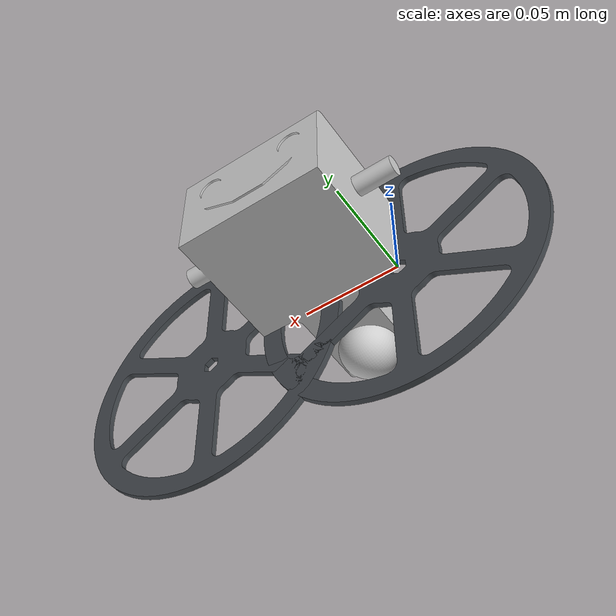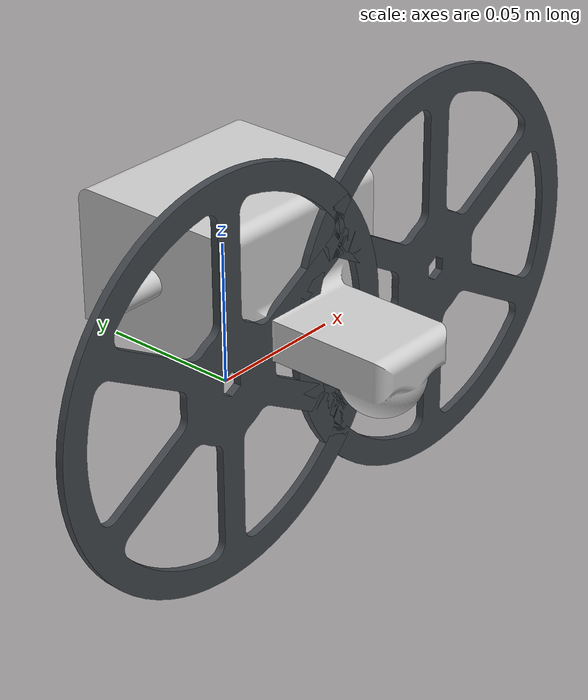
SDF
<sdf version="1.6">
    <model name="onshape">
        <link name="body">
            <visual name="body_0_body_visual">
                <pose>0 0 0 0 -0 0</pose>
                <geometry>
                    <mesh>
                        <uri>body.obj</uri>
                    </mesh>
                </geometry>
                <material>
                    <ambient>0.80000000000000004441 0.80000000000000004441 0.80000000000000004441 1</ambient>
                    <diffuse>0.80000000000000004441 0.80000000000000004441 0.80000000000000004441 1</diffuse>
                    <specular>0.1 0.1 0.1 1</specular>
                    <emissive>0 0 0 0</emissive>
                </material>
            </visual>
            <collision name="body_0_body_visual">
                <pose>0 0 0 0 -0 0</pose>
                <geometry>
                    <mesh>
                        <uri>/body.obj</uri>
                    </mesh>
                </geometry>
            </collision>
            <visual name="body_1_wheel_visual">
                <pose>0 0 0 0 -0 0</pose>
                <geometry>
                    <mesh>
                        <uri>wheel.obj</uri>
                    </mesh>
                </geometry>
                <material>
                    <ambient>0.26274509803921569651 0.28235294117647058432 0.30196078431372547213 1</ambient>
                    <diffuse>0.26274509803921569651 0.28235294117647058432 0.30196078431372547213 1</diffuse>
                    <specular>0.1 0.1 0.1 1</specular>
                    <emissive>0 0 0 0</emissive>
                </material>
            </visual>
            <collision name="body_1_wheel_visual">
                <pose>0 0 0 0 -0 0</pose>
                <geometry>
                    <mesh>
                        <uri>/wheel.obj</uri>
                    </mesh>
                </geometry>
            </collision>
            <inertial>
                <pose>0.030528834671778498633 0.026311528874656694987 0.022846745772597824159 0 0 0</pose>
                <mass>2.5741640170587927194</mass>
                <inertia>
                    <ixx>0.00242208258841036762</ixx>
                    <ixy>0.00011105211725562187186</ixy>
                    <ixz>3.8640056771370586645e-05</ixz>
                    <iyy>0.0025180176561021283543</iyy>
                    <iyz>-0.0002927496853081748172</iyz>
                    <izz>0.0035676303507577843827</izz>
                </inertia>
            </inertial>
        </link>

        <link name="wheel">
            <visual name="wheel_0_wheel_visual">
                <pose>0.10699999999999999789 0 -3.4694469519536141888e-18 0 -0 0</pose>
                <geometry>
                    <mesh>
                        <uri>wheel.obj</uri>
                    </mesh>
                </geometry>
                <material>
                    <ambient>0.26274509803921569651 0.28235294117647058432 0.30196078431372547213 1</ambient>
                    <diffuse>0.26274509803921569651 0.28235294117647058432 0.30196078431372547213 1</diffuse>
                    <specular>0.1 0.1 0.1 1</specular>
                    <emissive>0 0 0 0</emissive>
                </material>
            </visual>
            <collision name="wheel_0_wheel_visual">
                <pose>0.10699999999999999789 0 -3.4694469519536141888e-18 0 -0 0</pose>
                <geometry>
                    <mesh>
                        <uri>/wheel.obj</uri>
                    </mesh>
                </geometry>
            </collision>
            <inertial>
                <pose>0.090999999999999997558 0.03250000000000000111 0.024999999999999990979 0 0 0</pose>
                <mass>0.33541920259867769039</mass>
                <inertia>
                    <ixx>0.00034529842223087294558</ixx>
                    <ixy>0</ixy>
                    <ixz>0</ixz>
                    <iyy>0.00017436687051762195309</iyy>
                    <iyz>0</iyz>
                    <izz>0.00017436687051762189888</izz>
                </inertia>
            </inertial>
        </link>

        <joint name="wheel2_speed" type="revolute">
            <pose>0.09500000000000000111 0.032499999999999994171 0.024999999999999994449
                -1.570796326794896558 -0 1.570796326794896558</pose>
            <parent>body</parent>
            <child>wheel</child>
            <axis>
                <xyz>0 0 1</xyz>
                <limit>
                    <effort>1</effort>
                    <velocity>20</velocity>
                </limit>
            </axis>
        </joint>

    </model>
</sdf>
